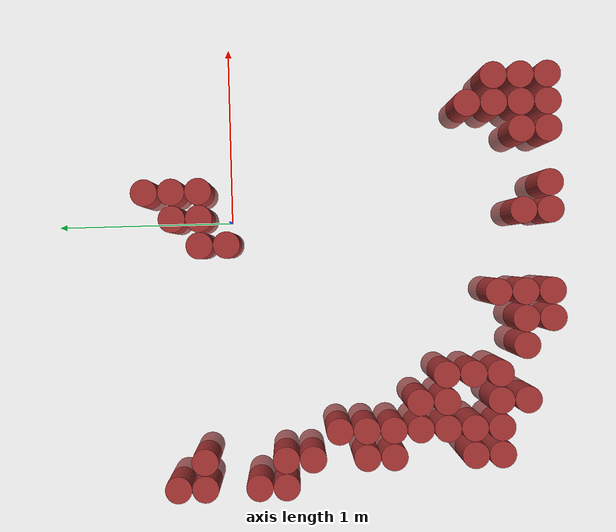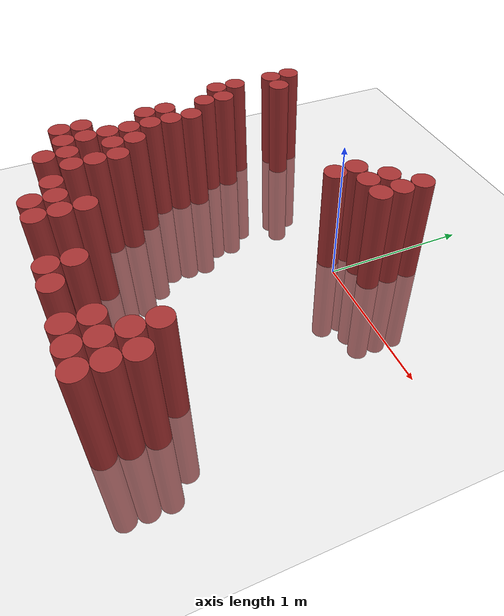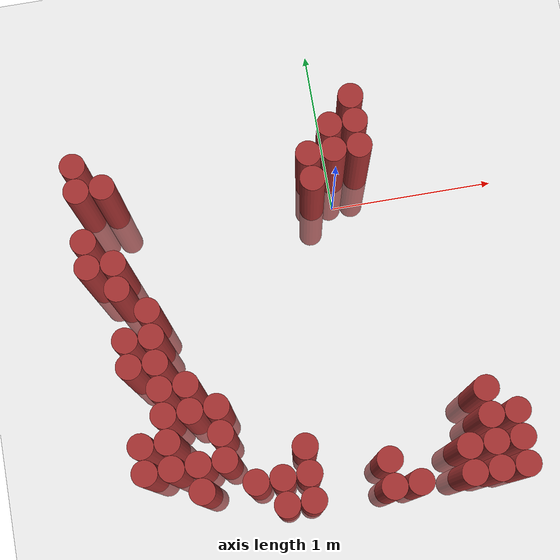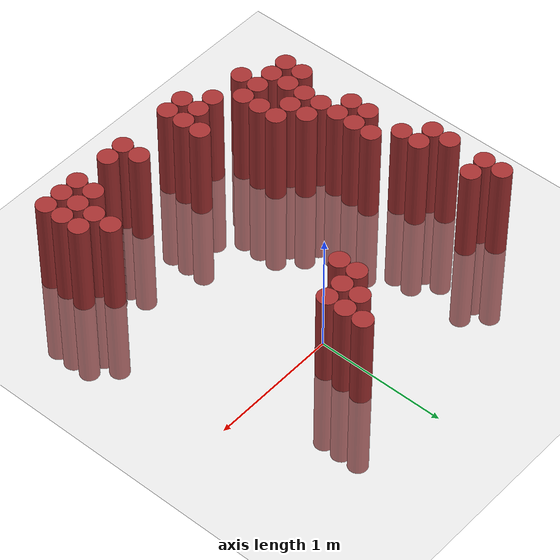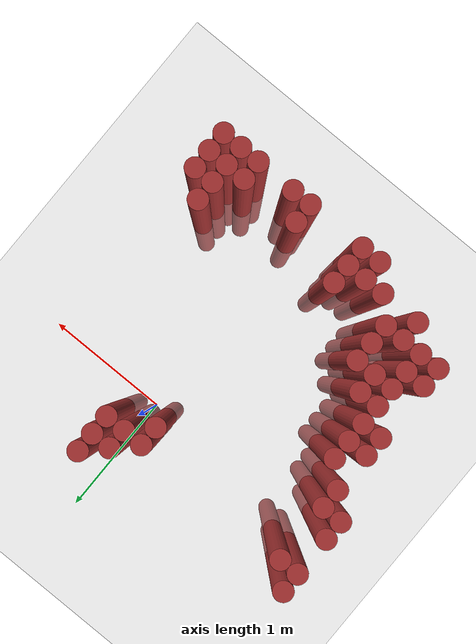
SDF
<sdf version="1.6">
 <world name="default">
  <model name="ground_plane">
   <static>1</static>
   <link name="link">
    <collision name="collision">
     <geometry><plane><normal>0 0 1</normal><size>100 100</size></plane></geometry>
     <surface><friction><ode><mu>100</mu><mu2>50</mu2></ode></friction></surface>
    </collision>
    <visual name="visual">
     <cast_shadows>0</cast_shadows>
     <geometry><plane><normal>0 0 1</normal><size>100 100</size></plane></geometry>
     <material>
      <script><uri>file://media/materials/scripts/gazebo.material</uri><name>Gazebo/Grey</name></script>
     </material>
    </visual>
   </link>
  </model>
  <model name="unit_cylinder_331">
   <static>1</static>
   <pose>-1.475000 -0.275000 0.000000 0.000000 0.000000 0.000000</pose>
   <link name="link">
    <inertial>
     <mass>1</mass>
     <inertia><ixx>0.145833</ixx><ixy>0</ixy><ixz>0</ixz><iyy>0.145833</iyy><iyz>0</iyz><izz>0.125</izz></inertia>
    </inertial>
    <collision name="collision">
     <geometry><cylinder><radius>0.075000</radius><length>1.5</length></cylinder></geometry>
    </collision>
    <visual name="visual">
     <geometry><cylinder><radius>0.075000</radius><length>1.5</length></cylinder></geometry>
     <material>
      <ambient>0.648000 0.192000 0.192000 1</ambient>
      <diffuse>0.648000 0.192000 0.192000 1</diffuse>
     </material>
     <material>
      <script><name>Gazebo/Grey</name><uri>file://media/materials/scripts/gazebo.material</uri></script>
     </material>
    </visual>
   </link>
  </model>
  <model name="unit_cylinder_332">
   <static>1</static>
   <pose>-1.475000 -0.125000 0.000000 0.000000 0.000000 0.000000</pose>
   <link name="link">
    <inertial>
     <mass>1</mass>
     <inertia><ixx>0.145833</ixx><ixy>0</ixy><ixz>0</ixz><iyy>0.145833</iyy><iyz>0</iyz><izz>0.125</izz></inertia>
    </inertial>
    <collision name="collision">
     <geometry><cylinder><radius>0.075000</radius><length>1.5</length></cylinder></geometry>
    </collision>
    <visual name="visual">
     <geometry><cylinder><radius>0.075000</radius><length>1.5</length></cylinder></geometry>
     <material>
      <ambient>0.648000 0.192000 0.192000 1</ambient>
      <diffuse>0.648000 0.192000 0.192000 1</diffuse>
     </material>
     <material>
      <script><name>Gazebo/Grey</name><uri>file://media/materials/scripts/gazebo.material</uri></script>
     </material>
    </visual>
   </link>
  </model>
  <model name="unit_cylinder_333">
   <static>1</static>
   <pose>-1.475000 0.175000 0.000000 0.000000 0.000000 0.000000</pose>
   <link name="link">
    <inertial>
     <mass>1</mass>
     <inertia><ixx>0.145833</ixx><ixy>0</ixy><ixz>0</ixz><iyy>0.145833</iyy><iyz>0</iyz><izz>0.125</izz></inertia>
    </inertial>
    <collision name="collision">
     <geometry><cylinder><radius>0.075000</radius><length>1.5</length></cylinder></geometry>
    </collision>
    <visual name="visual">
     <geometry><cylinder><radius>0.075000</radius><length>1.5</length></cylinder></geometry>
     <material>
      <ambient>0.648000 0.192000 0.192000 1</ambient>
      <diffuse>0.648000 0.192000 0.192000 1</diffuse>
     </material>
     <material>
      <script><name>Gazebo/Grey</name><uri>file://media/materials/scripts/gazebo.material</uri></script>
     </material>
    </visual>
   </link>
  </model>
  <model name="unit_cylinder_334">
   <static>1</static>
   <pose>-1.475000 0.325000 0.000000 0.000000 0.000000 0.000000</pose>
   <link name="link">
    <inertial>
     <mass>1</mass>
     <inertia><ixx>0.145833</ixx><ixy>0</ixy><ixz>0</ixz><iyy>0.145833</iyy><iyz>0</iyz><izz>0.125</izz></inertia>
    </inertial>
    <collision name="collision">
     <geometry><cylinder><radius>0.075000</radius><length>1.5</length></cylinder></geometry>
    </collision>
    <visual name="visual">
     <geometry><cylinder><radius>0.075000</radius><length>1.5</length></cylinder></geometry>
     <material>
      <ambient>0.648000 0.192000 0.192000 1</ambient>
      <diffuse>0.648000 0.192000 0.192000 1</diffuse>
     </material>
     <material>
      <script><name>Gazebo/Grey</name><uri>file://media/materials/scripts/gazebo.material</uri></script>
     </material>
    </visual>
   </link>
  </model>
  <model name="unit_cylinder_335">
   <static>1</static>
   <pose>-1.325000 -1.475000 0.000000 0.000000 0.000000 0.000000</pose>
   <link name="link">
    <inertial>
     <mass>1</mass>
     <inertia><ixx>0.145833</ixx><ixy>0</ixy><ixz>0</ixz><iyy>0.145833</iyy><iyz>0</iyz><izz>0.125</izz></inertia>
    </inertial>
    <collision name="collision">
     <geometry><cylinder><radius>0.075000</radius><length>1.5</length></cylinder></geometry>
    </collision>
    <visual name="visual">
     <geometry><cylinder><radius>0.075000</radius><length>1.5</length></cylinder></geometry>
     <material>
      <ambient>0.648000 0.192000 0.192000 1</ambient>
      <diffuse>0.648000 0.192000 0.192000 1</diffuse>
     </material>
     <material>
      <script><name>Gazebo/Grey</name><uri>file://media/materials/scripts/gazebo.material</uri></script>
     </material>
    </visual>
   </link>
  </model>
  <model name="unit_cylinder_336">
   <static>1</static>
   <pose>-1.325000 -1.325000 0.000000 0.000000 0.000000 0.000000</pose>
   <link name="link">
    <inertial>
     <mass>1</mass>
     <inertia><ixx>0.145833</ixx><ixy>0</ixy><ixz>0</ixz><iyy>0.145833</iyy><iyz>0</iyz><izz>0.125</izz></inertia>
    </inertial>
    <collision name="collision">
     <geometry><cylinder><radius>0.075000</radius><length>1.5</length></cylinder></geometry>
    </collision>
    <visual name="visual">
     <geometry><cylinder><radius>0.075000</radius><length>1.5</length></cylinder></geometry>
     <material>
      <ambient>0.648000 0.192000 0.192000 1</ambient>
      <diffuse>0.648000 0.192000 0.192000 1</diffuse>
     </material>
     <material>
      <script><name>Gazebo/Grey</name><uri>file://media/materials/scripts/gazebo.material</uri></script>
     </material>
    </visual>
   </link>
  </model>
  <model name="unit_cylinder_337">
   <static>1</static>
   <pose>-1.325000 -0.875000 0.000000 0.000000 0.000000 0.000000</pose>
   <link name="link">
    <inertial>
     <mass>1</mass>
     <inertia><ixx>0.145833</ixx><ixy>0</ixy><ixz>0</ixz><iyy>0.145833</iyy><iyz>0</iyz><izz>0.125</izz></inertia>
    </inertial>
    <collision name="collision">
     <geometry><cylinder><radius>0.075000</radius><length>1.5</length></cylinder></geometry>
    </collision>
    <visual name="visual">
     <geometry><cylinder><radius>0.075000</radius><length>1.5</length></cylinder></geometry>
     <material>
      <ambient>0.648000 0.192000 0.192000 1</ambient>
      <diffuse>0.648000 0.192000 0.192000 1</diffuse>
     </material>
     <material>
      <script><name>Gazebo/Grey</name><uri>file://media/materials/scripts/gazebo.material</uri></script>
     </material>
    </visual>
   </link>
  </model>
  <model name="unit_cylinder_338">
   <static>1</static>
   <pose>-1.325000 -0.725000 0.000000 0.000000 0.000000 0.000000</pose>
   <link name="link">
    <inertial>
     <mass>1</mass>
     <inertia><ixx>0.145833</ixx><ixy>0</ixy><ixz>0</ixz><iyy>0.145833</iyy><iyz>0</iyz><izz>0.125</izz></inertia>
    </inertial>
    <collision name="collision">
     <geometry><cylinder><radius>0.075000</radius><length>1.5</length></cylinder></geometry>
    </collision>
    <visual name="visual">
     <geometry><cylinder><radius>0.075000</radius><length>1.5</length></cylinder></geometry>
     <material>
      <ambient>0.648000 0.192000 0.192000 1</ambient>
      <diffuse>0.648000 0.192000 0.192000 1</diffuse>
     </material>
     <material>
      <script><name>Gazebo/Grey</name><uri>file://media/materials/scripts/gazebo.material</uri></script>
     </material>
    </visual>
   </link>
  </model>
  <model name="unit_cylinder_339">
   <static>1</static>
   <pose>-1.325000 -0.425000 0.000000 0.000000 0.000000 0.000000</pose>
   <link name="link">
    <inertial>
     <mass>1</mass>
     <inertia><ixx>0.145833</ixx><ixy>0</ixy><ixz>0</ixz><iyy>0.145833</iyy><iyz>0</iyz><izz>0.125</izz></inertia>
    </inertial>
    <collision name="collision">
     <geometry><cylinder><radius>0.075000</radius><length>1.5</length></cylinder></geometry>
    </collision>
    <visual name="visual">
     <geometry><cylinder><radius>0.075000</radius><length>1.5</length></cylinder></geometry>
     <material>
      <ambient>0.648000 0.192000 0.192000 1</ambient>
      <diffuse>0.648000 0.192000 0.192000 1</diffuse>
     </material>
     <material>
      <script><name>Gazebo/Grey</name><uri>file://media/materials/scripts/gazebo.material</uri></script>
     </material>
    </visual>
   </link>
  </model>
  <model name="unit_cylinder_340">
   <static>1</static>
   <pose>-1.325000 -0.275000 0.000000 0.000000 0.000000 0.000000</pose>
   <link name="link">
    <inertial>
     <mass>1</mass>
     <inertia><ixx>0.145833</ixx><ixy>0</ixy><ixz>0</ixz><iyy>0.145833</iyy><iyz>0</iyz><izz>0.125</izz></inertia>
    </inertial>
    <collision name="collision">
     <geometry><cylinder><radius>0.075000</radius><length>1.5</length></cylinder></geometry>
    </collision>
    <visual name="visual">
     <geometry><cylinder><radius>0.075000</radius><length>1.5</length></cylinder></geometry>
     <material>
      <ambient>0.648000 0.192000 0.192000 1</ambient>
      <diffuse>0.648000 0.192000 0.192000 1</diffuse>
     </material>
     <material>
      <script><name>Gazebo/Grey</name><uri>file://media/materials/scripts/gazebo.material</uri></script>
     </material>
    </visual>
   </link>
  </model>
  <model name="unit_cylinder_341">
   <static>1</static>
   <pose>-1.325000 0.175000 0.000000 0.000000 0.000000 0.000000</pose>
   <link name="link">
    <inertial>
     <mass>1</mass>
     <inertia><ixx>0.145833</ixx><ixy>0</ixy><ixz>0</ixz><iyy>0.145833</iyy><iyz>0</iyz><izz>0.125</izz></inertia>
    </inertial>
    <collision name="collision">
     <geometry><cylinder><radius>0.075000</radius><length>1.5</length></cylinder></geometry>
    </collision>
    <visual name="visual">
     <geometry><cylinder><radius>0.075000</radius><length>1.5</length></cylinder></geometry>
     <material>
      <ambient>0.648000 0.192000 0.192000 1</ambient>
      <diffuse>0.648000 0.192000 0.192000 1</diffuse>
     </material>
     <material>
      <script><name>Gazebo/Grey</name><uri>file://media/materials/scripts/gazebo.material</uri></script>
     </material>
    </visual>
   </link>
  </model>
  <model name="unit_cylinder_343">
   <static>1</static>
   <pose>-1.175000 -1.475000 0.000000 0.000000 0.000000 0.000000</pose>
   <link name="link">
    <inertial>
     <mass>1</mass>
     <inertia><ixx>0.145833</ixx><ixy>0</ixy><ixz>0</ixz><iyy>0.145833</iyy><iyz>0</iyz><izz>0.125</izz></inertia>
    </inertial>
    <collision name="collision">
     <geometry><cylinder><radius>0.075000</radius><length>1.5</length></cylinder></geometry>
    </collision>
    <visual name="visual">
     <geometry><cylinder><radius>0.075000</radius><length>1.5</length></cylinder></geometry>
     <material>
      <ambient>0.648000 0.192000 0.192000 1</ambient>
      <diffuse>0.648000 0.192000 0.192000 1</diffuse>
     </material>
     <material>
      <script><name>Gazebo/Grey</name><uri>file://media/materials/scripts/gazebo.material</uri></script>
     </material>
    </visual>
   </link>
  </model>
  <model name="unit_cylinder_344">
   <static>1</static>
   <pose>-1.175000 -1.325000 0.000000 0.000000 0.000000 0.000000</pose>
   <link name="link">
    <inertial>
     <mass>1</mass>
     <inertia><ixx>0.145833</ixx><ixy>0</ixy><ixz>0</ixz><iyy>0.145833</iyy><iyz>0</iyz><izz>0.125</izz></inertia>
    </inertial>
    <collision name="collision">
     <geometry><cylinder><radius>0.075000</radius><length>1.5</length></cylinder></geometry>
    </collision>
    <visual name="visual">
     <geometry><cylinder><radius>0.075000</radius><length>1.5</length></cylinder></geometry>
     <material>
      <ambient>0.648000 0.192000 0.192000 1</ambient>
      <diffuse>0.648000 0.192000 0.192000 1</diffuse>
     </material>
     <material>
      <script><name>Gazebo/Grey</name><uri>file://media/materials/scripts/gazebo.material</uri></script>
     </material>
    </visual>
   </link>
  </model>
  <model name="unit_cylinder_345">
   <static>1</static>
   <pose>-1.175000 -1.175000 0.000000 0.000000 0.000000 0.000000</pose>
   <link name="link">
    <inertial>
     <mass>1</mass>
     <inertia><ixx>0.145833</ixx><ixy>0</ixy><ixz>0</ixz><iyy>0.145833</iyy><iyz>0</iyz><izz>0.125</izz></inertia>
    </inertial>
    <collision name="collision">
     <geometry><cylinder><radius>0.075000</radius><length>1.5</length></cylinder></geometry>
    </collision>
    <visual name="visual">
     <geometry><cylinder><radius>0.075000</radius><length>1.5</length></cylinder></geometry>
     <material>
      <ambient>0.648000 0.192000 0.192000 1</ambient>
      <diffuse>0.648000 0.192000 0.192000 1</diffuse>
     </material>
     <material>
      <script><name>Gazebo/Grey</name><uri>file://media/materials/scripts/gazebo.material</uri></script>
     </material>
    </visual>
   </link>
  </model>
  <model name="unit_cylinder_346">
   <static>1</static>
   <pose>-1.175000 -1.025000 0.000000 0.000000 0.000000 0.000000</pose>
   <link name="link">
    <inertial>
     <mass>1</mass>
     <inertia><ixx>0.145833</ixx><ixy>0</ixy><ixz>0</ixz><iyy>0.145833</iyy><iyz>0</iyz><izz>0.125</izz></inertia>
    </inertial>
    <collision name="collision">
     <geometry><cylinder><radius>0.075000</radius><length>1.5</length></cylinder></geometry>
    </collision>
    <visual name="visual">
     <geometry><cylinder><radius>0.075000</radius><length>1.5</length></cylinder></geometry>
     <material>
      <ambient>0.648000 0.192000 0.192000 1</ambient>
      <diffuse>0.648000 0.192000 0.192000 1</diffuse>
     </material>
     <material>
      <script><name>Gazebo/Grey</name><uri>file://media/materials/scripts/gazebo.material</uri></script>
     </material>
    </visual>
   </link>
  </model>
  <model name="unit_cylinder_347">
   <static>1</static>
   <pose>-1.175000 -0.875000 0.000000 0.000000 0.000000 0.000000</pose>
   <link name="link">
    <inertial>
     <mass>1</mass>
     <inertia><ixx>0.145833</ixx><ixy>0</ixy><ixz>0</ixz><iyy>0.145833</iyy><iyz>0</iyz><izz>0.125</izz></inertia>
    </inertial>
    <collision name="collision">
     <geometry><cylinder><radius>0.075000</radius><length>1.5</length></cylinder></geometry>
    </collision>
    <visual name="visual">
     <geometry><cylinder><radius>0.075000</radius><length>1.5</length></cylinder></geometry>
     <material>
      <ambient>0.648000 0.192000 0.192000 1</ambient>
      <diffuse>0.648000 0.192000 0.192000 1</diffuse>
     </material>
     <material>
      <script><name>Gazebo/Grey</name><uri>file://media/materials/scripts/gazebo.material</uri></script>
     </material>
    </visual>
   </link>
  </model>
  <model name="unit_cylinder_348">
   <static>1</static>
   <pose>-1.175000 -0.725000 0.000000 0.000000 0.000000 0.000000</pose>
   <link name="link">
    <inertial>
     <mass>1</mass>
     <inertia><ixx>0.145833</ixx><ixy>0</ixy><ixz>0</ixz><iyy>0.145833</iyy><iyz>0</iyz><izz>0.125</izz></inertia>
    </inertial>
    <collision name="collision">
     <geometry><cylinder><radius>0.075000</radius><length>1.5</length></cylinder></geometry>
    </collision>
    <visual name="visual">
     <geometry><cylinder><radius>0.075000</radius><length>1.5</length></cylinder></geometry>
     <material>
      <ambient>0.648000 0.192000 0.192000 1</ambient>
      <diffuse>0.648000 0.192000 0.192000 1</diffuse>
     </material>
     <material>
      <script><name>Gazebo/Grey</name><uri>file://media/materials/scripts/gazebo.material</uri></script>
     </material>
    </visual>
   </link>
  </model>
  <model name="unit_cylinder_349">
   <static>1</static>
   <pose>-1.175000 -0.575000 0.000000 0.000000 0.000000 0.000000</pose>
   <link name="link">
    <inertial>
     <mass>1</mass>
     <inertia><ixx>0.145833</ixx><ixy>0</ixy><ixz>0</ixz><iyy>0.145833</iyy><iyz>0</iyz><izz>0.125</izz></inertia>
    </inertial>
    <collision name="collision">
     <geometry><cylinder><radius>0.075000</radius><length>1.5</length></cylinder></geometry>
    </collision>
    <visual name="visual">
     <geometry><cylinder><radius>0.075000</radius><length>1.5</length></cylinder></geometry>
     <material>
      <ambient>0.648000 0.192000 0.192000 1</ambient>
      <diffuse>0.648000 0.192000 0.192000 1</diffuse>
     </material>
     <material>
      <script><name>Gazebo/Grey</name><uri>file://media/materials/scripts/gazebo.material</uri></script>
     </material>
    </visual>
   </link>
  </model>
  <model name="unit_cylinder_354">
   <static>1</static>
   <pose>-1.025000 -1.625000 0.000000 0.000000 0.000000 0.000000</pose>
   <link name="link">
    <inertial>
     <mass>1</mass>
     <inertia><ixx>0.145833</ixx><ixy>0</ixy><ixz>0</ixz><iyy>0.145833</iyy><iyz>0</iyz><izz>0.125</izz></inertia>
    </inertial>
    <collision name="collision">
     <geometry><cylinder><radius>0.075000</radius><length>1.5</length></cylinder></geometry>
    </collision>
    <visual name="visual">
     <geometry><cylinder><radius>0.075000</radius><length>1.5</length></cylinder></geometry>
     <material>
      <ambient>0.648000 0.192000 0.192000 1</ambient>
      <diffuse>0.648000 0.192000 0.192000 1</diffuse>
     </material>
     <material>
      <script><name>Gazebo/Grey</name><uri>file://media/materials/scripts/gazebo.material</uri></script>
     </material>
    </visual>
   </link>
  </model>
  <model name="unit_cylinder_355">
   <static>1</static>
   <pose>-1.025000 -1.475000 0.000000 0.000000 0.000000 0.000000</pose>
   <link name="link">
    <inertial>
     <mass>1</mass>
     <inertia><ixx>0.145833</ixx><ixy>0</ixy><ixz>0</ixz><iyy>0.145833</iyy><iyz>0</iyz><izz>0.125</izz></inertia>
    </inertial>
    <collision name="collision">
     <geometry><cylinder><radius>0.075000</radius><length>1.5</length></cylinder></geometry>
    </collision>
    <visual name="visual">
     <geometry><cylinder><radius>0.075000</radius><length>1.5</length></cylinder></geometry>
     <material>
      <ambient>0.648000 0.192000 0.192000 1</ambient>
      <diffuse>0.648000 0.192000 0.192000 1</diffuse>
     </material>
     <material>
      <script><name>Gazebo/Grey</name><uri>file://media/materials/scripts/gazebo.material</uri></script>
     </material>
    </visual>
   </link>
  </model>
  <model name="unit_cylinder_356">
   <static>1</static>
   <pose>-1.025000 -1.175000 0.000000 0.000000 0.000000 0.000000</pose>
   <link name="link">
    <inertial>
     <mass>1</mass>
     <inertia><ixx>0.145833</ixx><ixy>0</ixy><ixz>0</ixz><iyy>0.145833</iyy><iyz>0</iyz><izz>0.125</izz></inertia>
    </inertial>
    <collision name="collision">
     <geometry><cylinder><radius>0.075000</radius><length>1.5</length></cylinder></geometry>
    </collision>
    <visual name="visual">
     <geometry><cylinder><radius>0.075000</radius><length>1.5</length></cylinder></geometry>
     <material>
      <ambient>0.648000 0.192000 0.192000 1</ambient>
      <diffuse>0.648000 0.192000 0.192000 1</diffuse>
     </material>
     <material>
      <script><name>Gazebo/Grey</name><uri>file://media/materials/scripts/gazebo.material</uri></script>
     </material>
    </visual>
   </link>
  </model>
  <model name="unit_cylinder_357">
   <static>1</static>
   <pose>-1.025000 -1.025000 0.000000 0.000000 0.000000 0.000000</pose>
   <link name="link">
    <inertial>
     <mass>1</mass>
     <inertia><ixx>0.145833</ixx><ixy>0</ixy><ixz>0</ixz><iyy>0.145833</iyy><iyz>0</iyz><izz>0.125</izz></inertia>
    </inertial>
    <collision name="collision">
     <geometry><cylinder><radius>0.075000</radius><length>1.5</length></cylinder></geometry>
    </collision>
    <visual name="visual">
     <geometry><cylinder><radius>0.075000</radius><length>1.5</length></cylinder></geometry>
     <material>
      <ambient>0.648000 0.192000 0.192000 1</ambient>
      <diffuse>0.648000 0.192000 0.192000 1</diffuse>
     </material>
     <material>
      <script><name>Gazebo/Grey</name><uri>file://media/materials/scripts/gazebo.material</uri></script>
     </material>
    </visual>
   </link>
  </model>
  <model name="unit_cylinder_363">
   <static>1</static>
   <pose>-0.875000 -1.475000 0.000000 0.000000 0.000000 0.000000</pose>
   <link name="link">
    <inertial>
     <mass>1</mass>
     <inertia><ixx>0.145833</ixx><ixy>0</ixy><ixz>0</ixz><iyy>0.145833</iyy><iyz>0</iyz><izz>0.125</izz></inertia>
    </inertial>
    <collision name="collision">
     <geometry><cylinder><radius>0.075000</radius><length>1.5</length></cylinder></geometry>
    </collision>
    <visual name="visual">
     <geometry><cylinder><radius>0.075000</radius><length>1.5</length></cylinder></geometry>
     <material>
      <ambient>0.648000 0.192000 0.192000 1</ambient>
      <diffuse>0.648000 0.192000 0.192000 1</diffuse>
     </material>
     <material>
      <script><name>Gazebo/Grey</name><uri>file://media/materials/scripts/gazebo.material</uri></script>
     </material>
    </visual>
   </link>
  </model>
  <model name="unit_cylinder_364">
   <static>1</static>
   <pose>-0.875000 -1.325000 0.000000 0.000000 0.000000 0.000000</pose>
   <link name="link">
    <inertial>
     <mass>1</mass>
     <inertia><ixx>0.145833</ixx><ixy>0</ixy><ixz>0</ixz><iyy>0.145833</iyy><iyz>0</iyz><izz>0.125</izz></inertia>
    </inertial>
    <collision name="collision">
     <geometry><cylinder><radius>0.075000</radius><length>1.5</length></cylinder></geometry>
    </collision>
    <visual name="visual">
     <geometry><cylinder><radius>0.075000</radius><length>1.5</length></cylinder></geometry>
     <material>
      <ambient>0.648000 0.192000 0.192000 1</ambient>
      <diffuse>0.648000 0.192000 0.192000 1</diffuse>
     </material>
     <material>
      <script><name>Gazebo/Grey</name><uri>file://media/materials/scripts/gazebo.material</uri></script>
     </material>
    </visual>
   </link>
  </model>
  <model name="unit_cylinder_365">
   <static>1</static>
   <pose>-0.875000 -1.175000 0.000000 0.000000 0.000000 0.000000</pose>
   <link name="link">
    <inertial>
     <mass>1</mass>
     <inertia><ixx>0.145833</ixx><ixy>0</ixy><ixz>0</ixz><iyy>0.145833</iyy><iyz>0</iyz><izz>0.125</izz></inertia>
    </inertial>
    <collision name="collision">
     <geometry><cylinder><radius>0.075000</radius><length>1.5</length></cylinder></geometry>
    </collision>
    <visual name="visual">
     <geometry><cylinder><radius>0.075000</radius><length>1.5</length></cylinder></geometry>
     <material>
      <ambient>0.648000 0.192000 0.192000 1</ambient>
      <diffuse>0.648000 0.192000 0.192000 1</diffuse>
     </material>
     <material>
      <script><name>Gazebo/Grey</name><uri>file://media/materials/scripts/gazebo.material</uri></script>
     </material>
    </visual>
   </link>
  </model>
  <model name="unit_cylinder_369">
   <static>1</static>
   <pose>-0.725000 -1.625000 0.000000 0.000000 0.000000 0.000000</pose>
   <link name="link">
    <inertial>
     <mass>1</mass>
     <inertia><ixx>0.145833</ixx><ixy>0</ixy><ixz>0</ixz><iyy>0.145833</iyy><iyz>0</iyz><izz>0.125</izz></inertia>
    </inertial>
    <collision name="collision">
     <geometry><cylinder><radius>0.075000</radius><length>1.5</length></cylinder></geometry>
    </collision>
    <visual name="visual">
     <geometry><cylinder><radius>0.075000</radius><length>1.5</length></cylinder></geometry>
     <material>
      <ambient>0.648000 0.192000 0.192000 1</ambient>
      <diffuse>0.648000 0.192000 0.192000 1</diffuse>
     </material>
     <material>
      <script><name>Gazebo/Grey</name><uri>file://media/materials/scripts/gazebo.material</uri></script>
     </material>
    </visual>
   </link>
  </model>
  <model name="unit_cylinder_373">
   <static>1</static>
   <pose>-0.575000 -1.775000 0.000000 0.000000 0.000000 0.000000</pose>
   <link name="link">
    <inertial>
     <mass>1</mass>
     <inertia><ixx>0.145833</ixx><ixy>0</ixy><ixz>0</ixz><iyy>0.145833</iyy><iyz>0</iyz><izz>0.125</izz></inertia>
    </inertial>
    <collision name="collision">
     <geometry><cylinder><radius>0.075000</radius><length>1.5</length></cylinder></geometry>
    </collision>
    <visual name="visual">
     <geometry><cylinder><radius>0.075000</radius><length>1.5</length></cylinder></geometry>
     <material>
      <ambient>0.648000 0.192000 0.192000 1</ambient>
      <diffuse>0.648000 0.192000 0.192000 1</diffuse>
     </material>
     <material>
      <script><name>Gazebo/Grey</name><uri>file://media/materials/scripts/gazebo.material</uri></script>
     </material>
    </visual>
   </link>
  </model>
  <model name="unit_cylinder_374">
   <static>1</static>
   <pose>-0.575000 -1.625000 0.000000 0.000000 0.000000 0.000000</pose>
   <link name="link">
    <inertial>
     <mass>1</mass>
     <inertia><ixx>0.145833</ixx><ixy>0</ixy><ixz>0</ixz><iyy>0.145833</iyy><iyz>0</iyz><izz>0.125</izz></inertia>
    </inertial>
    <collision name="collision">
     <geometry><cylinder><radius>0.075000</radius><length>1.5</length></cylinder></geometry>
    </collision>
    <visual name="visual">
     <geometry><cylinder><radius>0.075000</radius><length>1.5</length></cylinder></geometry>
     <material>
      <ambient>0.648000 0.192000 0.192000 1</ambient>
      <diffuse>0.648000 0.192000 0.192000 1</diffuse>
     </material>
     <material>
      <script><name>Gazebo/Grey</name><uri>file://media/materials/scripts/gazebo.material</uri></script>
     </material>
    </visual>
   </link>
  </model>
  <model name="unit_cylinder_378">
   <static>1</static>
   <pose>-0.425000 -1.775000 0.000000 0.000000 0.000000 0.000000</pose>
   <link name="link">
    <inertial>
     <mass>1</mass>
     <inertia><ixx>0.145833</ixx><ixy>0</ixy><ixz>0</ixz><iyy>0.145833</iyy><iyz>0</iyz><izz>0.125</izz></inertia>
    </inertial>
    <collision name="collision">
     <geometry><cylinder><radius>0.075000</radius><length>1.5</length></cylinder></geometry>
    </collision>
    <visual name="visual">
     <geometry><cylinder><radius>0.075000</radius><length>1.5</length></cylinder></geometry>
     <material>
      <ambient>0.648000 0.192000 0.192000 1</ambient>
      <diffuse>0.648000 0.192000 0.192000 1</diffuse>
     </material>
     <material>
      <script><name>Gazebo/Grey</name><uri>file://media/materials/scripts/gazebo.material</uri></script>
     </material>
    </visual>
   </link>
  </model>
  <model name="unit_cylinder_379">
   <static>1</static>
   <pose>-0.425000 -1.625000 0.000000 0.000000 0.000000 0.000000</pose>
   <link name="link">
    <inertial>
     <mass>1</mass>
     <inertia><ixx>0.145833</ixx><ixy>0</ixy><ixz>0</ixz><iyy>0.145833</iyy><iyz>0</iyz><izz>0.125</izz></inertia>
    </inertial>
    <collision name="collision">
     <geometry><cylinder><radius>0.075000</radius><length>1.5</length></cylinder></geometry>
    </collision>
    <visual name="visual">
     <geometry><cylinder><radius>0.075000</radius><length>1.5</length></cylinder></geometry>
     <material>
      <ambient>0.648000 0.192000 0.192000 1</ambient>
      <diffuse>0.648000 0.192000 0.192000 1</diffuse>
     </material>
     <material>
      <script><name>Gazebo/Grey</name><uri>file://media/materials/scripts/gazebo.material</uri></script>
     </material>
    </visual>
   </link>
  </model>
  <model name="unit_cylinder_380">
   <static>1</static>
   <pose>-0.425000 -1.475000 0.000000 0.000000 0.000000 0.000000</pose>
   <link name="link">
    <inertial>
     <mass>1</mass>
     <inertia><ixx>0.145833</ixx><ixy>0</ixy><ixz>0</ixz><iyy>0.145833</iyy><iyz>0</iyz><izz>0.125</izz></inertia>
    </inertial>
    <collision name="collision">
     <geometry><cylinder><radius>0.075000</radius><length>1.5</length></cylinder></geometry>
    </collision>
    <visual name="visual">
     <geometry><cylinder><radius>0.075000</radius><length>1.5</length></cylinder></geometry>
     <material>
      <ambient>0.648000 0.192000 0.192000 1</ambient>
      <diffuse>0.648000 0.192000 0.192000 1</diffuse>
     </material>
     <material>
      <script><name>Gazebo/Grey</name><uri>file://media/materials/scripts/gazebo.material</uri></script>
     </material>
    </visual>
   </link>
  </model>
  <model name="unit_cylinder_384">
   <static>1</static>
   <pose>-0.125000 0.025000 0.000000 0.000000 0.000000 0.000000</pose>
   <link name="link">
    <inertial>
     <mass>1</mass>
     <inertia><ixx>0.145833</ixx><ixy>0</ixy><ixz>0</ixz><iyy>0.145833</iyy><iyz>0</iyz><izz>0.125</izz></inertia>
    </inertial>
    <collision name="collision">
     <geometry><cylinder><radius>0.075000</radius><length>1.5</length></cylinder></geometry>
    </collision>
    <visual name="visual">
     <geometry><cylinder><radius>0.075000</radius><length>1.5</length></cylinder></geometry>
     <material>
      <ambient>0.648000 0.192000 0.192000 1</ambient>
      <diffuse>0.648000 0.192000 0.192000 1</diffuse>
     </material>
     <material>
      <script><name>Gazebo/Grey</name><uri>file://media/materials/scripts/gazebo.material</uri></script>
     </material>
    </visual>
   </link>
  </model>
  <model name="unit_cylinder_385">
   <static>1</static>
   <pose>-0.125000 0.175000 0.000000 0.000000 0.000000 0.000000</pose>
   <link name="link">
    <inertial>
     <mass>1</mass>
     <inertia><ixx>0.145833</ixx><ixy>0</ixy><ixz>0</ixz><iyy>0.145833</iyy><iyz>0</iyz><izz>0.125</izz></inertia>
    </inertial>
    <collision name="collision">
     <geometry><cylinder><radius>0.075000</radius><length>1.5</length></cylinder></geometry>
    </collision>
    <visual name="visual">
     <geometry><cylinder><radius>0.075000</radius><length>1.5</length></cylinder></geometry>
     <material>
      <ambient>0.648000 0.192000 0.192000 1</ambient>
      <diffuse>0.648000 0.192000 0.192000 1</diffuse>
     </material>
     <material>
      <script><name>Gazebo/Grey</name><uri>file://media/materials/scripts/gazebo.material</uri></script>
     </material>
    </visual>
   </link>
  </model>
  <model name="unit_cylinder_387">
   <static>1</static>
   <pose>0.025000 -1.775000 0.000000 0.000000 0.000000 0.000000</pose>
   <link name="link">
    <inertial>
     <mass>1</mass>
     <inertia><ixx>0.145833</ixx><ixy>0</ixy><ixz>0</ixz><iyy>0.145833</iyy><iyz>0</iyz><izz>0.125</izz></inertia>
    </inertial>
    <collision name="collision">
     <geometry><cylinder><radius>0.075000</radius><length>1.5</length></cylinder></geometry>
    </collision>
    <visual name="visual">
     <geometry><cylinder><radius>0.075000</radius><length>1.5</length></cylinder></geometry>
     <material>
      <ambient>0.648000 0.192000 0.192000 1</ambient>
      <diffuse>0.648000 0.192000 0.192000 1</diffuse>
     </material>
     <material>
      <script><name>Gazebo/Grey</name><uri>file://media/materials/scripts/gazebo.material</uri></script>
     </material>
    </visual>
   </link>
  </model>
  <model name="unit_cylinder_388">
   <static>1</static>
   <pose>0.025000 -1.625000 0.000000 0.000000 0.000000 0.000000</pose>
   <link name="link">
    <inertial>
     <mass>1</mass>
     <inertia><ixx>0.145833</ixx><ixy>0</ixy><ixz>0</ixz><iyy>0.145833</iyy><iyz>0</iyz><izz>0.125</izz></inertia>
    </inertial>
    <collision name="collision">
     <geometry><cylinder><radius>0.075000</radius><length>1.5</length></cylinder></geometry>
    </collision>
    <visual name="visual">
     <geometry><cylinder><radius>0.075000</radius><length>1.5</length></cylinder></geometry>
     <material>
      <ambient>0.648000 0.192000 0.192000 1</ambient>
      <diffuse>0.648000 0.192000 0.192000 1</diffuse>
     </material>
     <material>
      <script><name>Gazebo/Grey</name><uri>file://media/materials/scripts/gazebo.material</uri></script>
     </material>
    </visual>
   </link>
  </model>
  <model name="unit_cylinder_389">
   <static>1</static>
   <pose>0.025000 0.175000 0.000000 0.000000 0.000000 0.000000</pose>
   <link name="link">
    <inertial>
     <mass>1</mass>
     <inertia><ixx>0.145833</ixx><ixy>0</ixy><ixz>0</ixz><iyy>0.145833</iyy><iyz>0</iyz><izz>0.125</izz></inertia>
    </inertial>
    <collision name="collision">
     <geometry><cylinder><radius>0.075000</radius><length>1.5</length></cylinder></geometry>
    </collision>
    <visual name="visual">
     <geometry><cylinder><radius>0.075000</radius><length>1.5</length></cylinder></geometry>
     <material>
      <ambient>0.648000 0.192000 0.192000 1</ambient>
      <diffuse>0.648000 0.192000 0.192000 1</diffuse>
     </material>
     <material>
      <script><name>Gazebo/Grey</name><uri>file://media/materials/scripts/gazebo.material</uri></script>
     </material>
    </visual>
   </link>
  </model>
  <model name="unit_cylinder_390">
   <static>1</static>
   <pose>0.025000 0.325000 0.000000 0.000000 0.000000 0.000000</pose>
   <link name="link">
    <inertial>
     <mass>1</mass>
     <inertia><ixx>0.145833</ixx><ixy>0</ixy><ixz>0</ixz><iyy>0.145833</iyy><iyz>0</iyz><izz>0.125</izz></inertia>
    </inertial>
    <collision name="collision">
     <geometry><cylinder><radius>0.075000</radius><length>1.5</length></cylinder></geometry>
    </collision>
    <visual name="visual">
     <geometry><cylinder><radius>0.075000</radius><length>1.5</length></cylinder></geometry>
     <material>
      <ambient>0.648000 0.192000 0.192000 1</ambient>
      <diffuse>0.648000 0.192000 0.192000 1</diffuse>
     </material>
     <material>
      <script><name>Gazebo/Grey</name><uri>file://media/materials/scripts/gazebo.material</uri></script>
     </material>
    </visual>
   </link>
  </model>
  <model name="unit_cylinder_391">
   <static>1</static>
   <pose>0.175000 -1.775000 0.000000 0.000000 0.000000 0.000000</pose>
   <link name="link">
    <inertial>
     <mass>1</mass>
     <inertia><ixx>0.145833</ixx><ixy>0</ixy><ixz>0</ixz><iyy>0.145833</iyy><iyz>0</iyz><izz>0.125</izz></inertia>
    </inertial>
    <collision name="collision">
     <geometry><cylinder><radius>0.075000</radius><length>1.5</length></cylinder></geometry>
    </collision>
    <visual name="visual">
     <geometry><cylinder><radius>0.075000</radius><length>1.5</length></cylinder></geometry>
     <material>
      <ambient>0.648000 0.192000 0.192000 1</ambient>
      <diffuse>0.648000 0.192000 0.192000 1</diffuse>
     </material>
     <material>
      <script><name>Gazebo/Grey</name><uri>file://media/materials/scripts/gazebo.material</uri></script>
     </material>
    </visual>
   </link>
  </model>
  <model name="unit_cylinder_392">
   <static>1</static>
   <pose>0.175000 0.175000 0.000000 0.000000 0.000000 0.000000</pose>
   <link name="link">
    <inertial>
     <mass>1</mass>
     <inertia><ixx>0.145833</ixx><ixy>0</ixy><ixz>0</ixz><iyy>0.145833</iyy><iyz>0</iyz><izz>0.125</izz></inertia>
    </inertial>
    <collision name="collision">
     <geometry><cylinder><radius>0.075000</radius><length>1.5</length></cylinder></geometry>
    </collision>
    <visual name="visual">
     <geometry><cylinder><radius>0.075000</radius><length>1.5</length></cylinder></geometry>
     <material>
      <ambient>0.648000 0.192000 0.192000 1</ambient>
      <diffuse>0.648000 0.192000 0.192000 1</diffuse>
     </material>
     <material>
      <script><name>Gazebo/Grey</name><uri>file://media/materials/scripts/gazebo.material</uri></script>
     </material>
    </visual>
   </link>
  </model>
  <model name="unit_cylinder_393">
   <static>1</static>
   <pose>0.175000 0.325000 0.000000 0.000000 0.000000 0.000000</pose>
   <link name="link">
    <inertial>
     <mass>1</mass>
     <inertia><ixx>0.145833</ixx><ixy>0</ixy><ixz>0</ixz><iyy>0.145833</iyy><iyz>0</iyz><izz>0.125</izz></inertia>
    </inertial>
    <collision name="collision">
     <geometry><cylinder><radius>0.075000</radius><length>1.5</length></cylinder></geometry>
    </collision>
    <visual name="visual">
     <geometry><cylinder><radius>0.075000</radius><length>1.5</length></cylinder></geometry>
     <material>
      <ambient>0.648000 0.192000 0.192000 1</ambient>
      <diffuse>0.648000 0.192000 0.192000 1</diffuse>
     </material>
     <material>
      <script><name>Gazebo/Grey</name><uri>file://media/materials/scripts/gazebo.material</uri></script>
     </material>
    </visual>
   </link>
  </model>
  <model name="unit_cylinder_394">
   <static>1</static>
   <pose>0.175000 0.475000 0.000000 0.000000 0.000000 0.000000</pose>
   <link name="link">
    <inertial>
     <mass>1</mass>
     <inertia><ixx>0.145833</ixx><ixy>0</ixy><ixz>0</ixz><iyy>0.145833</iyy><iyz>0</iyz><izz>0.125</izz></inertia>
    </inertial>
    <collision name="collision">
     <geometry><cylinder><radius>0.075000</radius><length>1.5</length></cylinder></geometry>
    </collision>
    <visual name="visual">
     <geometry><cylinder><radius>0.075000</radius><length>1.5</length></cylinder></geometry>
     <material>
      <ambient>0.648000 0.192000 0.192000 1</ambient>
      <diffuse>0.648000 0.192000 0.192000 1</diffuse>
     </material>
     <material>
      <script><name>Gazebo/Grey</name><uri>file://media/materials/scripts/gazebo.material</uri></script>
     </material>
    </visual>
   </link>
  </model>
  <model name="unit_cylinder_395">
   <static>1</static>
   <pose>0.475000 -1.775000 0.000000 0.000000 0.000000 0.000000</pose>
   <link name="link">
    <inertial>
     <mass>1</mass>
     <inertia><ixx>0.145833</ixx><ixy>0</ixy><ixz>0</ixz><iyy>0.145833</iyy><iyz>0</iyz><izz>0.125</izz></inertia>
    </inertial>
    <collision name="collision">
     <geometry><cylinder><radius>0.075000</radius><length>1.5</length></cylinder></geometry>
    </collision>
    <visual name="visual">
     <geometry><cylinder><radius>0.075000</radius><length>1.5</length></cylinder></geometry>
     <material>
      <ambient>0.648000 0.192000 0.192000 1</ambient>
      <diffuse>0.648000 0.192000 0.192000 1</diffuse>
     </material>
     <material>
      <script><name>Gazebo/Grey</name><uri>file://media/materials/scripts/gazebo.material</uri></script>
     </material>
    </visual>
   </link>
  </model>
  <model name="unit_cylinder_396">
   <static>1</static>
   <pose>0.475000 -1.625000 0.000000 0.000000 0.000000 0.000000</pose>
   <link name="link">
    <inertial>
     <mass>1</mass>
     <inertia><ixx>0.145833</ixx><ixy>0</ixy><ixz>0</ixz><iyy>0.145833</iyy><iyz>0</iyz><izz>0.125</izz></inertia>
    </inertial>
    <collision name="collision">
     <geometry><cylinder><radius>0.075000</radius><length>1.5</length></cylinder></geometry>
    </collision>
    <visual name="visual">
     <geometry><cylinder><radius>0.075000</radius><length>1.5</length></cylinder></geometry>
     <material>
      <ambient>0.648000 0.192000 0.192000 1</ambient>
      <diffuse>0.648000 0.192000 0.192000 1</diffuse>
     </material>
     <material>
      <script><name>Gazebo/Grey</name><uri>file://media/materials/scripts/gazebo.material</uri></script>
     </material>
    </visual>
   </link>
  </model>
  <model name="unit_cylinder_398">
   <static>1</static>
   <pose>0.625000 -1.775000 0.000000 0.000000 0.000000 0.000000</pose>
   <link name="link">
    <inertial>
     <mass>1</mass>
     <inertia><ixx>0.145833</ixx><ixy>0</ixy><ixz>0</ixz><iyy>0.145833</iyy><iyz>0</iyz><izz>0.125</izz></inertia>
    </inertial>
    <collision name="collision">
     <geometry><cylinder><radius>0.075000</radius><length>1.5</length></cylinder></geometry>
    </collision>
    <visual name="visual">
     <geometry><cylinder><radius>0.075000</radius><length>1.5</length></cylinder></geometry>
     <material>
      <ambient>0.648000 0.192000 0.192000 1</ambient>
      <diffuse>0.648000 0.192000 0.192000 1</diffuse>
     </material>
     <material>
      <script><name>Gazebo/Grey</name><uri>file://media/materials/scripts/gazebo.material</uri></script>
     </material>
    </visual>
   </link>
  </model>
  <model name="unit_cylinder_399">
   <static>1</static>
   <pose>0.625000 -1.625000 0.000000 0.000000 0.000000 0.000000</pose>
   <link name="link">
    <inertial>
     <mass>1</mass>
     <inertia><ixx>0.145833</ixx><ixy>0</ixy><ixz>0</ixz><iyy>0.145833</iyy><iyz>0</iyz><izz>0.125</izz></inertia>
    </inertial>
    <collision name="collision">
     <geometry><cylinder><radius>0.075000</radius><length>1.5</length></cylinder></geometry>
    </collision>
    <visual name="visual">
     <geometry><cylinder><radius>0.075000</radius><length>1.5</length></cylinder></geometry>
     <material>
      <ambient>0.648000 0.192000 0.192000 1</ambient>
      <diffuse>0.648000 0.192000 0.192000 1</diffuse>
     </material>
     <material>
      <script><name>Gazebo/Grey</name><uri>file://media/materials/scripts/gazebo.material</uri></script>
     </material>
    </visual>
   </link>
  </model>
  <model name="unit_cylinder_400">
   <static>1</static>
   <pose>0.625000 -1.475000 0.000000 0.000000 0.000000 0.000000</pose>
   <link name="link">
    <inertial>
     <mass>1</mass>
     <inertia><ixx>0.145833</ixx><ixy>0</ixy><ixz>0</ixz><iyy>0.145833</iyy><iyz>0</iyz><izz>0.125</izz></inertia>
    </inertial>
    <collision name="collision">
     <geometry><cylinder><radius>0.075000</radius><length>1.5</length></cylinder></geometry>
    </collision>
    <visual name="visual">
     <geometry><cylinder><radius>0.075000</radius><length>1.5</length></cylinder></geometry>
     <material>
      <ambient>0.648000 0.192000 0.192000 1</ambient>
      <diffuse>0.648000 0.192000 0.192000 1</diffuse>
     </material>
     <material>
      <script><name>Gazebo/Grey</name><uri>file://media/materials/scripts/gazebo.material</uri></script>
     </material>
    </visual>
   </link>
  </model>
  <model name="unit_cylinder_401">
   <static>1</static>
   <pose>0.625000 -1.325000 0.000000 0.000000 0.000000 0.000000</pose>
   <link name="link">
    <inertial>
     <mass>1</mass>
     <inertia><ixx>0.145833</ixx><ixy>0</ixy><ixz>0</ixz><iyy>0.145833</iyy><iyz>0</iyz><izz>0.125</izz></inertia>
    </inertial>
    <collision name="collision">
     <geometry><cylinder><radius>0.075000</radius><length>1.5</length></cylinder></geometry>
    </collision>
    <visual name="visual">
     <geometry><cylinder><radius>0.075000</radius><length>1.5</length></cylinder></geometry>
     <material>
      <ambient>0.648000 0.192000 0.192000 1</ambient>
      <diffuse>0.648000 0.192000 0.192000 1</diffuse>
     </material>
     <material>
      <script><name>Gazebo/Grey</name><uri>file://media/materials/scripts/gazebo.material</uri></script>
     </material>
    </visual>
   </link>
  </model>
  <model name="unit_cylinder_405">
   <static>1</static>
   <pose>0.775000 -1.775000 0.000000 0.000000 0.000000 0.000000</pose>
   <link name="link">
    <inertial>
     <mass>1</mass>
     <inertia><ixx>0.145833</ixx><ixy>0</ixy><ixz>0</ixz><iyy>0.145833</iyy><iyz>0</iyz><izz>0.125</izz></inertia>
    </inertial>
    <collision name="collision">
     <geometry><cylinder><radius>0.075000</radius><length>1.5</length></cylinder></geometry>
    </collision>
    <visual name="visual">
     <geometry><cylinder><radius>0.075000</radius><length>1.5</length></cylinder></geometry>
     <material>
      <ambient>0.648000 0.192000 0.192000 1</ambient>
      <diffuse>0.648000 0.192000 0.192000 1</diffuse>
     </material>
     <material>
      <script><name>Gazebo/Grey</name><uri>file://media/materials/scripts/gazebo.material</uri></script>
     </material>
    </visual>
   </link>
  </model>
  <model name="unit_cylinder_406">
   <static>1</static>
   <pose>0.775000 -1.625000 0.000000 0.000000 0.000000 0.000000</pose>
   <link name="link">
    <inertial>
     <mass>1</mass>
     <inertia><ixx>0.145833</ixx><ixy>0</ixy><ixz>0</ixz><iyy>0.145833</iyy><iyz>0</iyz><izz>0.125</izz></inertia>
    </inertial>
    <collision name="collision">
     <geometry><cylinder><radius>0.075000</radius><length>1.5</length></cylinder></geometry>
    </collision>
    <visual name="visual">
     <geometry><cylinder><radius>0.075000</radius><length>1.5</length></cylinder></geometry>
     <material>
      <ambient>0.648000 0.192000 0.192000 1</ambient>
      <diffuse>0.648000 0.192000 0.192000 1</diffuse>
     </material>
     <material>
      <script><name>Gazebo/Grey</name><uri>file://media/materials/scripts/gazebo.material</uri></script>
     </material>
    </visual>
   </link>
  </model>
  <model name="unit_cylinder_407">
   <static>1</static>
   <pose>0.775000 -1.475000 0.000000 0.000000 0.000000 0.000000</pose>
   <link name="link">
    <inertial>
     <mass>1</mass>
     <inertia><ixx>0.145833</ixx><ixy>0</ixy><ixz>0</ixz><iyy>0.145833</iyy><iyz>0</iyz><izz>0.125</izz></inertia>
    </inertial>
    <collision name="collision">
     <geometry><cylinder><radius>0.075000</radius><length>1.5</length></cylinder></geometry>
    </collision>
    <visual name="visual">
     <geometry><cylinder><radius>0.075000</radius><length>1.5</length></cylinder></geometry>
     <material>
      <ambient>0.648000 0.192000 0.192000 1</ambient>
      <diffuse>0.648000 0.192000 0.192000 1</diffuse>
     </material>
     <material>
      <script><name>Gazebo/Grey</name><uri>file://media/materials/scripts/gazebo.material</uri></script>
     </material>
    </visual>
   </link>
  </model>
 </world>
</sdf>
